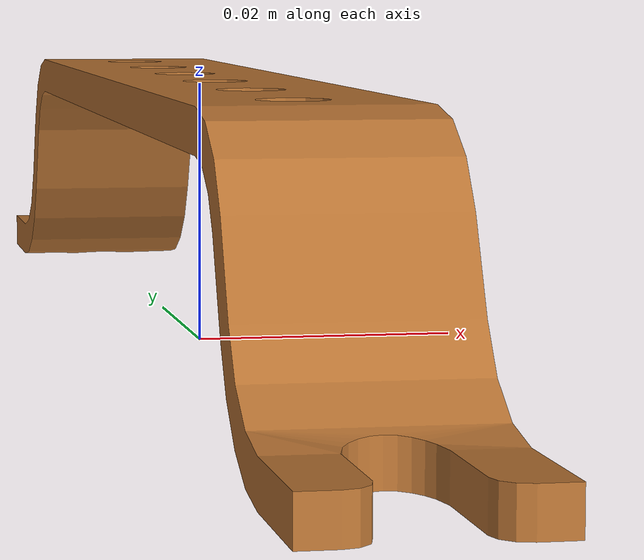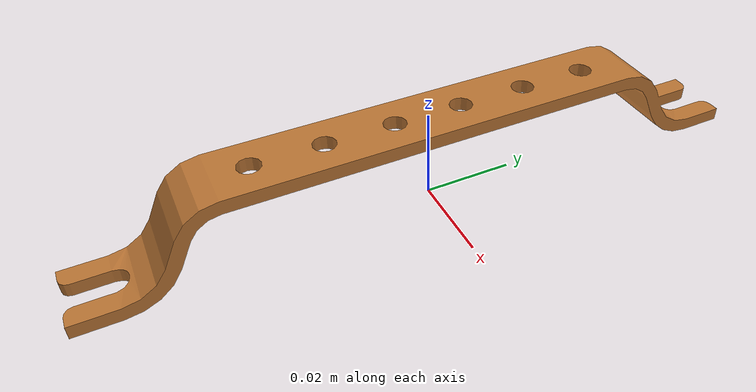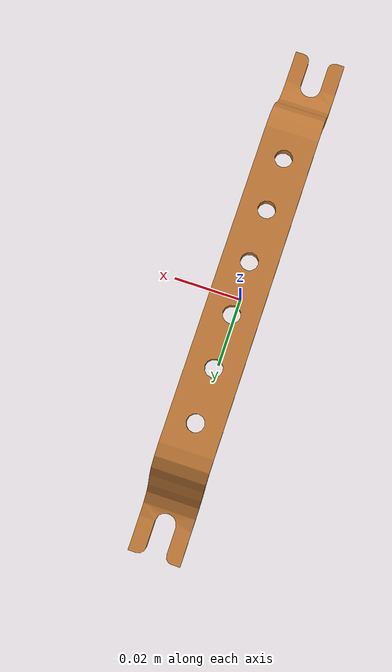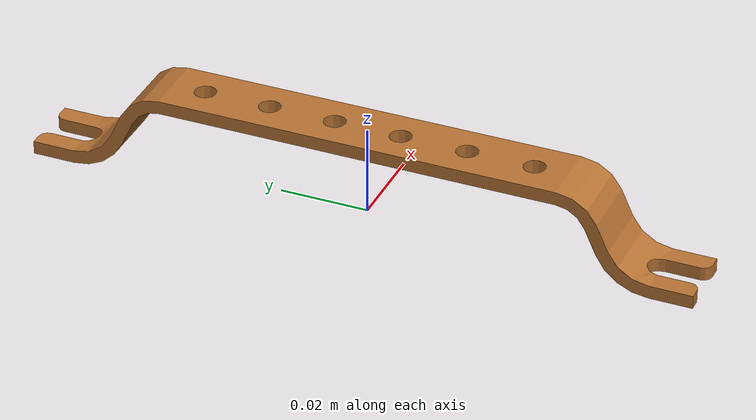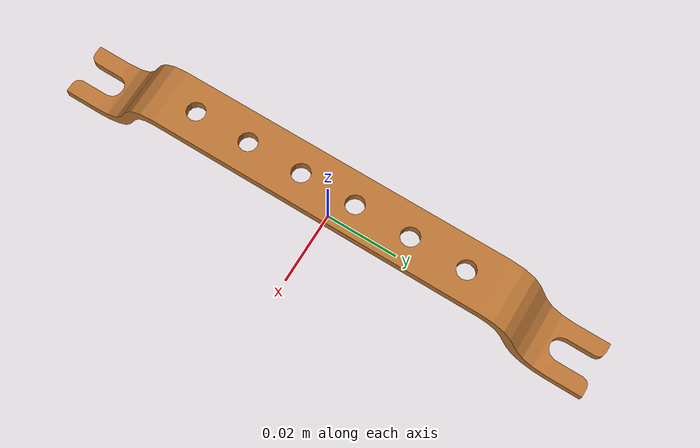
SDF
<?xml version="1.0" ?>
<sdf version="1.6">
  <model name="busbar_6p">
    <link name="link">
      <gravity>false</gravity>
      <visual name="visual">
        <geometry>
          <mesh>
            <uri>file:///root/workcell_ws_classic/src/descriptions/ur_description/meshes/feeder/elec/objects/Busbar_6P.STL</uri>
            <scale>1 1 1</scale>
          </mesh>
        </geometry>
        <material>
          <!-- Copper color -->
          <ambient>0.72 0.45 0.2 1</ambient>
          <diffuse>0.72 0.45 0.2 1</diffuse>
          <specular>0.9 0.7 0.5 1</specular>
          <emissive>0 0 0 1</emissive>
        </material>
      </visual>

        <inertial>
          <mass>0.3</mass>
          <inertia>
            <ixx>0.001</ixx>
            <ixy>0</ixy>
            <ixz>0</ixz>
            <iyy>0.001</iyy>
            <iyz>0</iyz>
            <izz>0.001</izz>
          </inertia>
        </inertial>
    </link>
  </model>
</sdf>
